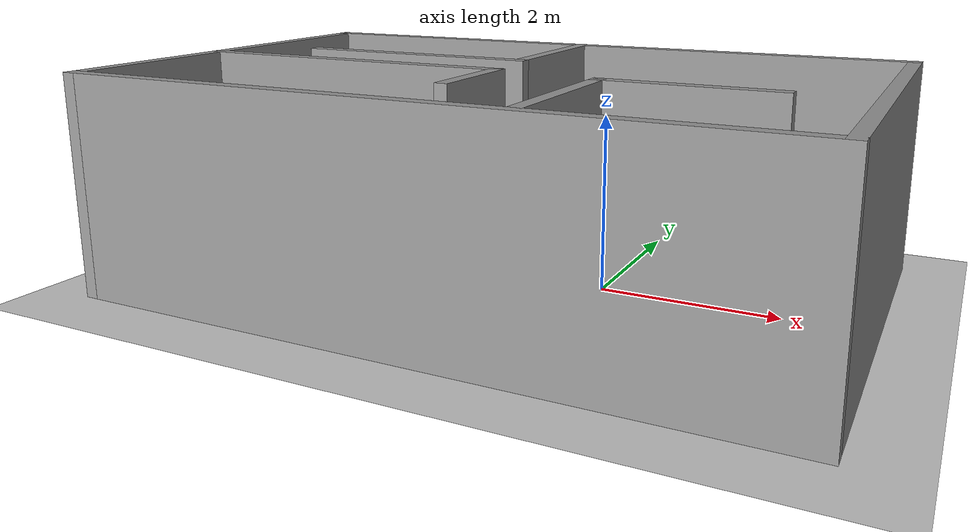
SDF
<sdf version="1.7">
 <world name="default">
  <light name="sun" type="directional">
   <pose>0 0 10 0 -0 0</pose>
   <diffuse>0.8 0.8 0.8 1</diffuse>
   <specular>0.2 0.2 0.2 1</specular>
   <attenuation>
    <range>1000</range>
    <constant>0.9</constant>
    <linear>0.01</linear>
    <quadratic>0.001</quadratic>
   </attenuation>
   <direction>-0.5 0.1 -0.9</direction>
   <spot><inner_angle>0</inner_angle><outer_angle>0</outer_angle><falloff>0</falloff></spot>
  </light>
  <model name="ground_plane">
   <static>1</static>
   <link name="link">
    <collision name="collision">
     <geometry><plane><normal>0 0 1</normal><size>100 100</size></plane></geometry>
     <surface><friction><ode><mu>100</mu><mu2>50</mu2></ode></friction></surface>
    </collision>
    <visual name="visual">
     <cast_shadows>0</cast_shadows>
     <geometry><plane><normal>0 0 1</normal><size>100 100</size></plane></geometry>
     <material>
      <script><uri>file://media/materials/scripts/gazebo.material</uri><name>Gazebo/Grey</name></script>
     </material>
    </visual>
   </link>
  </model>
  <gravity>0 0 -9.8</gravity>
  <magnetic_field>6e-06 2.3e-05 -4.2e-05</magnetic_field>
  <atmosphere type="adiabatic"/>
  <physics type="ode">
   <max_step_size>0.001</max_step_size>
   <real_time_factor>1</real_time_factor>
   <real_time_update_rate>1000</real_time_update_rate>
  </physics>
  <scene><ambient>0.4 0.4 0.4 1</ambient><background>0.7 0.7 0.7 1</background><shadows>1</shadows></scene>
  <audio><device>default</device></audio>
  <spherical_coordinates>
   <surface_model>EARTH_WGS84</surface_model>
   <latitude_deg>0</latitude_deg>
   <longitude_deg>0</longitude_deg>
   <elevation>0</elevation>
   <heading_deg>0</heading_deg>
  </spherical_coordinates>
  <model name="room">
   <pose>-1.02078 0.363949 0 0 -0 0</pose>
   <link name="Wall_10">
    <collision name="Wall_10_Collision">
     <geometry><box><size>5 0.15 2.5</size></box></geometry>
     <pose>0 0 1.25 0 -0 0</pose>
    </collision>
    <visual name="Wall_10_Visual">
     <pose>0 0 1.25 0 -0 0</pose>
     <geometry><box><size>5 0.15 2.5</size></box></geometry>
     <material>
      <script><uri>file://media/materials/scripts/gazebo.material</uri><name>Gazebo/Grey</name></script>
      <ambient>1 1 1 1</ambient>
     </material>
     <meta><layer>0</layer></meta>
    </visual>
    <pose>-3.925 -0.6325 0 0 -0 1.5708</pose>
   </link>
   <link name="Wall_12">
    <collision name="Wall_12_Collision">
     <geometry><box><size>2 0.15 2.5</size></box></geometry>
     <pose>0 0 1.25 0 -0 0</pose>
    </collision>
    <visual name="Wall_12_Visual">
     <pose>0 0 1.25 0 -0 0</pose>
     <geometry><box><size>2 0.15 2.5</size></box></geometry>
     <material>
      <script><uri>file://media/materials/scripts/gazebo.material</uri><name>Gazebo/Grey</name></script>
      <ambient>1 1 1 1</ambient>
     </material>
     <meta><layer>0</layer></meta>
    </visual>
    <pose>-0.171144 0.865591 0 0 -0 -1.5708</pose>
   </link>
   <link name="Wall_13">
    <collision name="Wall_13_Collision">
     <geometry><box><size>3 0.15 2.5</size></box></geometry>
     <pose>0 0 1.25 0 -0 0</pose>
    </collision>
    <visual name="Wall_13_Visual">
     <pose>0 0 1.25 0 -0 0</pose>
     <geometry><box><size>3 0.15 2.5</size></box></geometry>
     <material>
      <script><uri>file://media/materials/scripts/gazebo.material</uri><name>Gazebo/Grey</name></script>
      <ambient>1 1 1 1</ambient>
     </material>
     <meta><layer>0</layer></meta>
    </visual>
    <pose>-1.59614 -0.059409 0 0 -0 3.14159</pose>
   </link>
   <link name="Wall_18">
    <collision name="Wall_18_Collision">
     <geometry><box><size>4 0.15 2.5</size></box></geometry>
     <pose>0 0 1.25 0 -0 0</pose>
    </collision>
    <visual name="Wall_18_Visual">
     <pose>0 0 1.25 0 -0 0</pose>
     <geometry><box><size>4 0.15 2.5</size></box></geometry>
     <material>
      <script><uri>file://media/materials/scripts/gazebo.material</uri><name>Gazebo/Grey</name></script>
      <ambient>1 1 1 1</ambient>
     </material>
     <meta><layer>0</layer></meta>
    </visual>
    <pose>-1.97753 -0.886196 0 0 -0 0</pose>
   </link>
   <link name="Wall_19">
    <collision name="Wall_19_Collision">
     <geometry><box><size>1.25 0.15 2.5</size></box></geometry>
     <pose>0 0 1.25 0 -0 0</pose>
    </collision>
    <visual name="Wall_19_Visual">
     <pose>0 0 1.25 0 -0 0</pose>
     <geometry><box><size>1.25 0.15 2.5</size></box></geometry>
     <material>
      <script><uri>file://media/materials/scripts/gazebo.material</uri><name>Gazebo/Grey</name></script>
      <ambient>1 1 1 1</ambient>
     </material>
     <meta><layer>0</layer></meta>
    </visual>
    <pose>-0.052526 -1.4362 0 0 -0 -1.5708</pose>
   </link>
   <link name="Wall_23">
    <collision name="Wall_23_Collision">
     <geometry><box><size>2 0.15 2.5</size></box></geometry>
     <pose>0 0 1.25 0 -0 0</pose>
    </collision>
    <visual name="Wall_23_Visual">
     <pose>0 0 1.25 0 -0 0</pose>
     <geometry><box><size>2 0.15 2.5</size></box></geometry>
     <material>
      <script><uri>file://media/materials/scripts/gazebo.material</uri><name>Gazebo/Grey</name></script>
      <ambient>1 1 1 1</ambient>
     </material>
     <meta><layer>0</layer></meta>
    </visual>
    <pose>1.2035 -2.02468 0 0 -0 1.5708</pose>
   </link>
   <link name="Wall_24">
    <collision name="Wall_24_Collision">
     <geometry><box><size>2 0.15 2.5</size></box></geometry>
     <pose>0 0 1.25 0 -0 0</pose>
    </collision>
    <visual name="Wall_24_Visual">
     <pose>0 0 1.25 0 -0 0</pose>
     <geometry><box><size>2 0.15 2.5</size></box></geometry>
     <material>
      <script><uri>file://media/materials/scripts/gazebo.material</uri><name>Gazebo/Grey</name></script>
      <ambient>1 1 1 1</ambient>
     </material>
     <meta><layer>0</layer></meta>
    </visual>
    <pose>2.1285 -1.09968 0 0 -0 0</pose>
   </link>
   <link name="Wall_7">
    <collision name="Wall_7_Collision">
     <geometry><box><size>8 0.15 2.5</size></box></geometry>
     <pose>0 0 1.25 0 -0 0</pose>
    </collision>
    <visual name="Wall_7_Visual">
     <pose>0 0 1.25 0 -0 0</pose>
     <geometry><box><size>8 0.15 2.5</size></box></geometry>
     <material>
      <script><uri>file://media/materials/scripts/gazebo.material</uri><name>Gazebo/Grey</name></script>
      <ambient>1 1 1 1</ambient>
     </material>
     <meta><layer>0</layer></meta>
    </visual>
    <pose>0 1.7925 0 0 -0 0</pose>
   </link>
   <link name="Wall_8">
    <collision name="Wall_8_Collision">
     <geometry><box><size>5 0.15 2.5</size></box></geometry>
     <pose>0 0 1.25 0 -0 0</pose>
    </collision>
    <visual name="Wall_8_Visual">
     <pose>0 0 1.25 0 -0 0</pose>
     <geometry><box><size>5 0.15 2.5</size></box></geometry>
     <material>
      <script><uri>file://media/materials/scripts/gazebo.material</uri><name>Gazebo/Grey</name></script>
      <ambient>1 1 1 1</ambient>
     </material>
     <meta><layer>0</layer></meta>
    </visual>
    <pose>3.925 -0.6325 0 0 -0 -1.5708</pose>
   </link>
   <link name="Wall_9">
    <collision name="Wall_9_Collision">
     <geometry><box><size>8 0.15 2.5</size></box></geometry>
     <pose>0 0 1.25 0 -0 0</pose>
    </collision>
    <visual name="Wall_9_Visual">
     <pose>0 0 1.25 0 -0 0</pose>
     <geometry><box><size>8 0.15 2.5</size></box></geometry>
     <material>
      <script><uri>file://media/materials/scripts/gazebo.material</uri><name>Gazebo/Grey</name></script>
      <ambient>1 1 1 1</ambient>
     </material>
     <meta><layer>0</layer></meta>
    </visual>
    <pose>0 -3.0575 0 0 -0 3.14159</pose>
   </link>
   <static>1</static>
  </model>
  <model name="unit_box">
   <pose>0.829032 0.660141 0.5 0 -0 0</pose>
   <link name="link">
    <inertial>
     <mass>1</mass>
     <inertia>
      <ixx>0.166667</ixx>
      <ixy>0</ixy>
      <ixz>0</ixz>
      <iyy>0.166667</iyy>
      <iyz>0</iyz>
      <izz>0.166667</izz>
     </inertia>
    </inertial>
    <collision name="collision"><geometry><box><size>1 1 1</size></box></geometry></collision>
    <visual name="visual">
     <geometry><box><size>1 1 1</size></box></geometry>
     <material>
      <script><name>Gazebo/Grey</name><uri>file://media/materials/scripts/gazebo.material</uri></script>
     </material>
    </visual>
   </link>
  </model>
 </world>
</sdf>
